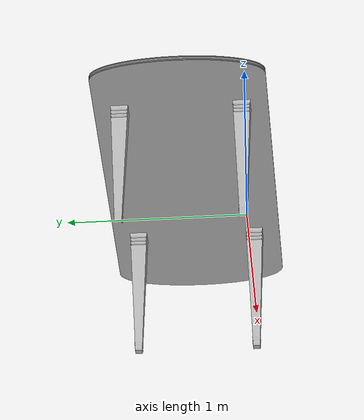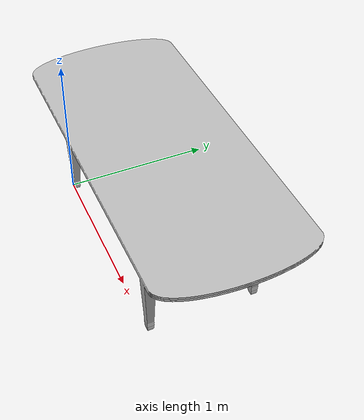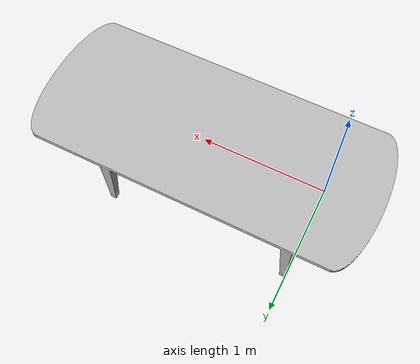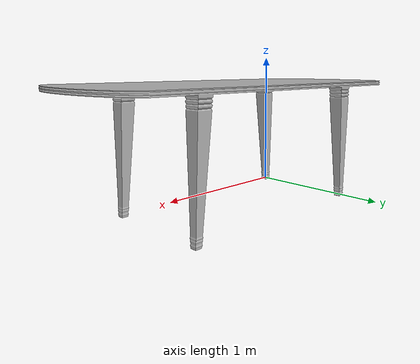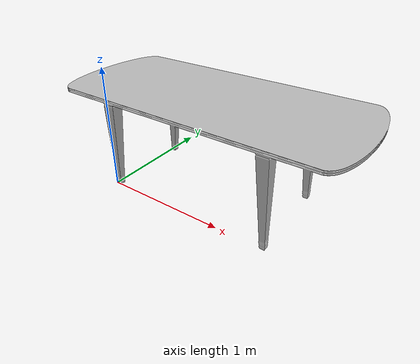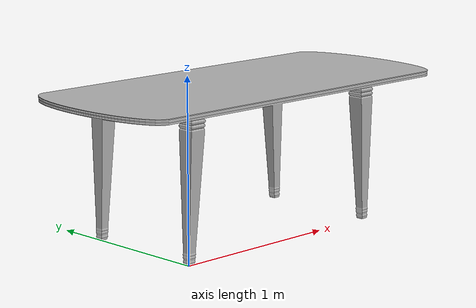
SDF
<?xml version="1.0"?>
<sdf version="1.5">
    <model name="table">
        <static> true </static>
        <pose> 0 0 0 0 0 0 </pose>
        <link name="base">
            <visual name="table">
                <geometry>
                    <mesh><uri> model://living_room_table/meshes/table.stl </uri></mesh>
                </geometry>
            </visual>
        </link>
    </model>
</sdf>
